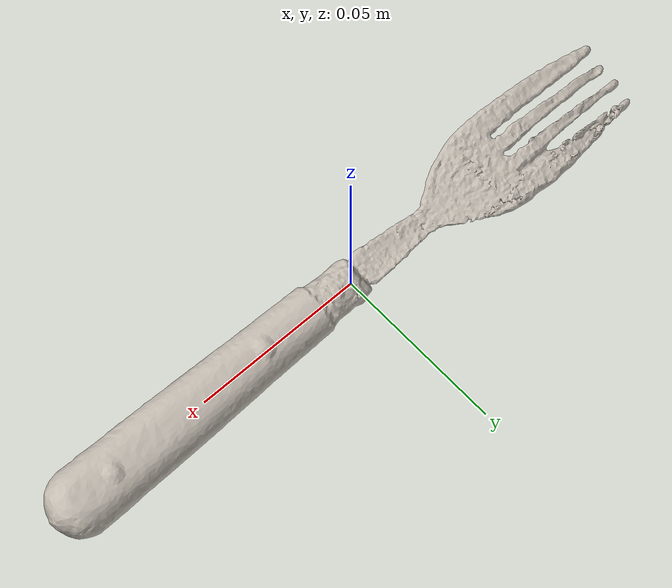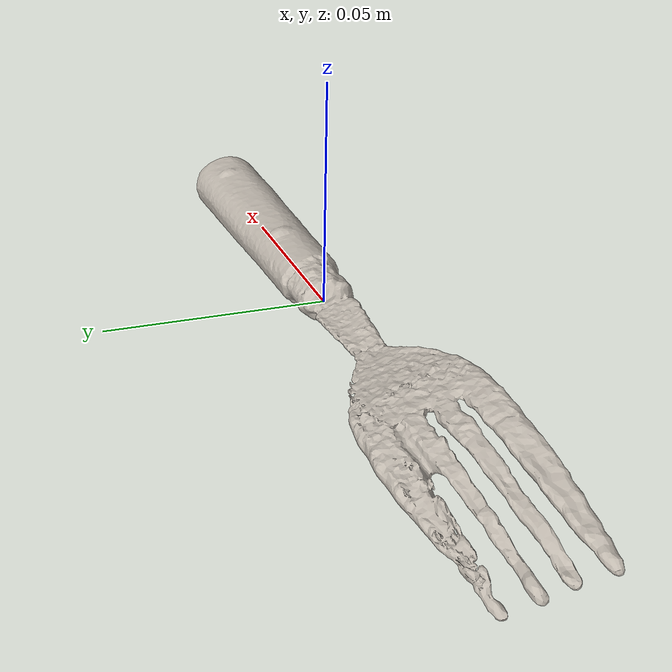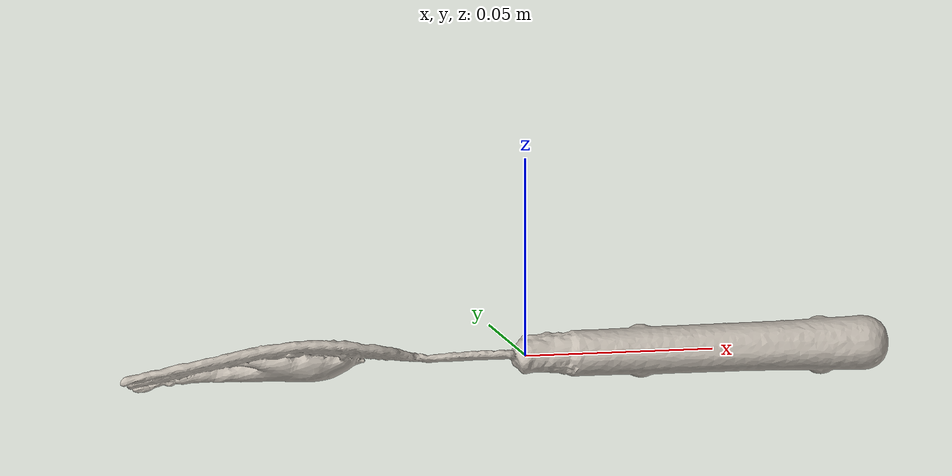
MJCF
<mujoco model="fork">
  <default>
    <default class="visual">
      <geom group="1" type="mesh" contype="0" conaffinity="0"/>
    </default>
    <default class="collision">
      <geom group="0" type="mesh"/>
    </default>
  </default>
  <asset>
    <texture type="2d" name="fork" file="fork.png"/>
    <material name="fork" texture="fork" specular="0.4000000000000001" shininess="0.001"/>
    <mesh name="fork" file="fork.obj"/>
  </asset>
  <worldbody>
    <body>
    <body name="object">
      <geom material="fork" mesh="fork" class="visual"/>
      <geom mesh="fork" class="collision"/>
    </body>
	      <site rgba="0 0 0 0" size="0.005" pos="0 0 -0.04" name="bottom_site" />
	      <site rgba="0 0 0 0" size="0.005" pos="0 0 0.04" name="top_site" />
	      <site rgba="0 0 0 0" size="0.005" pos="0.005 0.005 0" name="horizontal_radius_site" />
   </body>
  </worldbody>
</mujoco>
